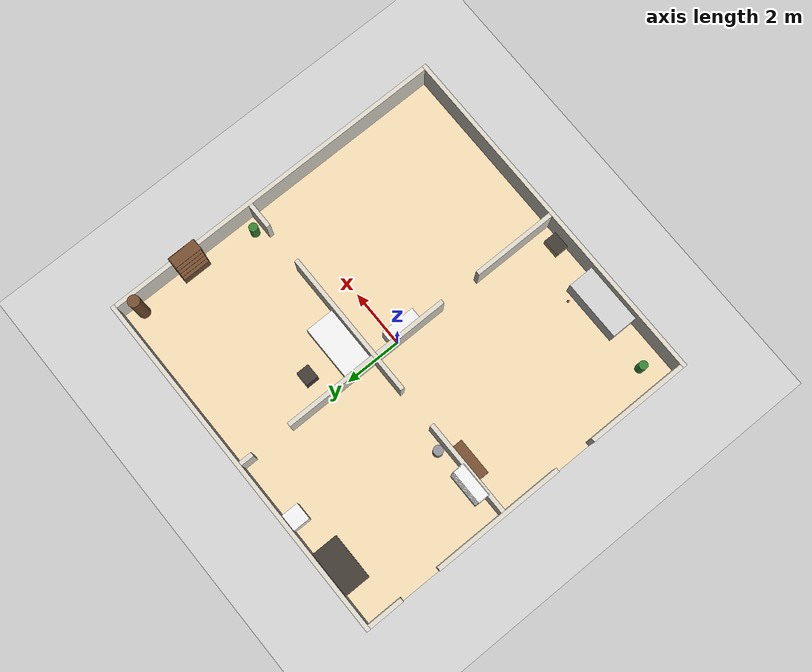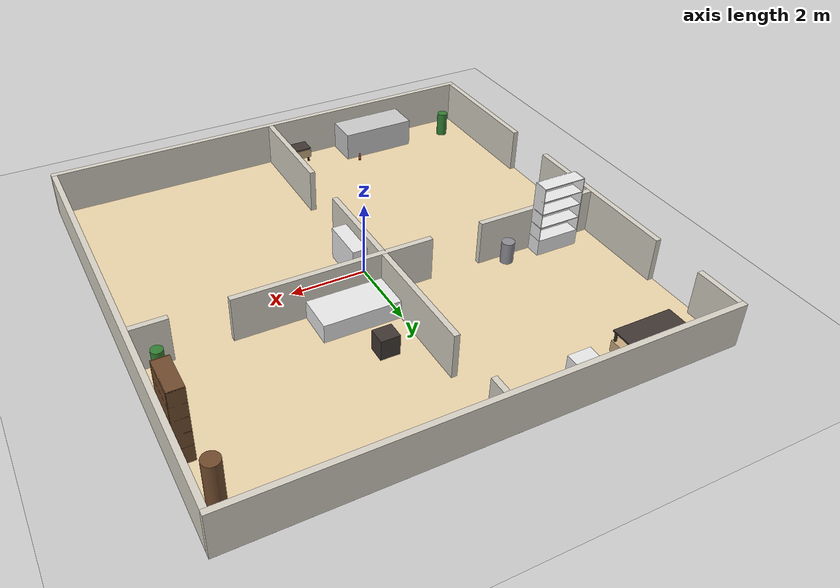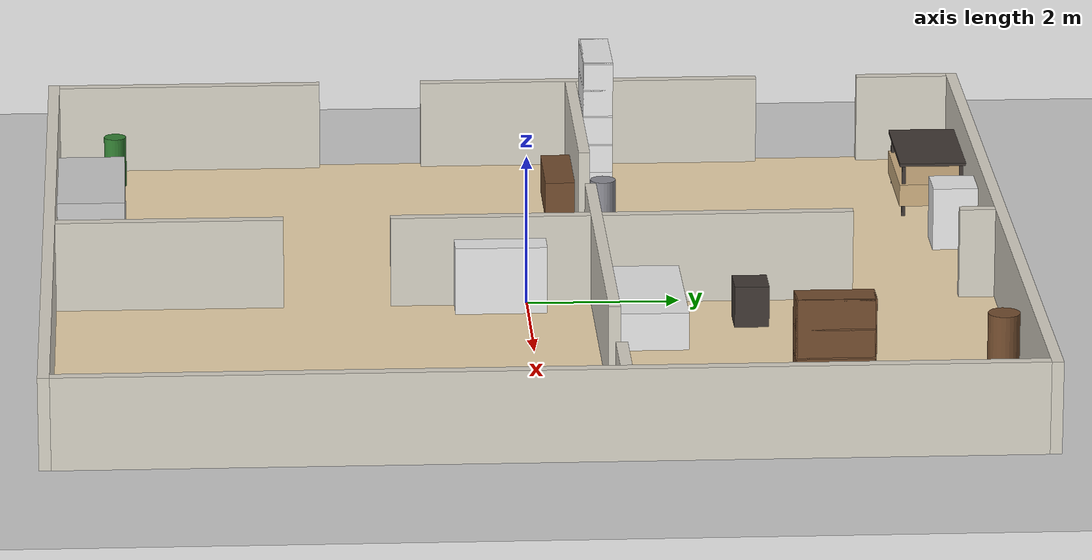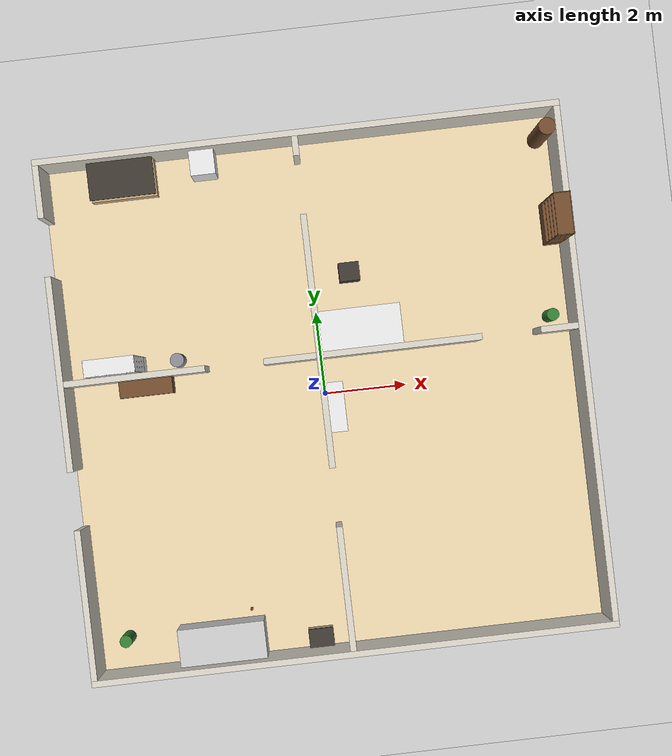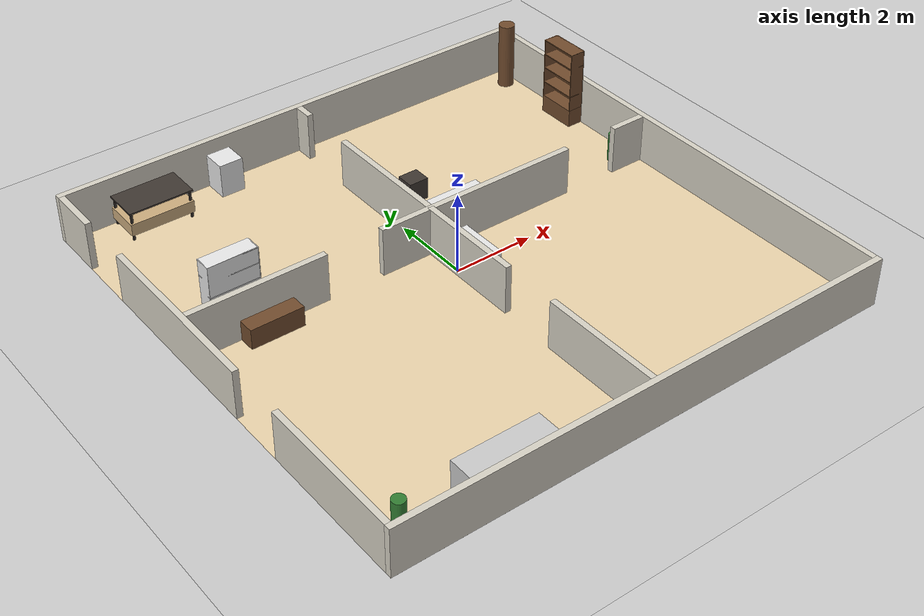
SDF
<sdf version="1.6">
 <world name="robocup_casa">
  <include><uri>model://sun</uri></include>
  <include><uri>model://ground_plane</uri></include>
  <model name="muros">
   <static>true</static>
   <link name="l0">
    <pose>0.000 -6.225 0.600 0 0 0.0000</pose>
    <collision name="c"><geometry><box><size>12.600 0.150 1.200</size></box></geometry></collision>
    <visual name="v">
     <geometry><box><size>12.600 0.150 1.200</size></box></geometry>
     <material><ambient>0.85 0.83 0.78 1</ambient><diffuse>0.85 0.83 0.78 1</diffuse></material>
    </visual>
   </link>
   <link name="l1">
    <pose>0.000 6.225 0.600 0 0 0.0000</pose>
    <collision name="c"><geometry><box><size>12.600 0.150 1.200</size></box></geometry></collision>
    <visual name="v">
     <geometry><box><size>12.600 0.150 1.200</size></box></geometry>
     <material><ambient>0.85 0.83 0.78 1</ambient><diffuse>0.85 0.83 0.78 1</diffuse></material>
    </visual>
   </link>
   <link name="l2">
    <pose>6.225 0.000 0.600 0 0 0.0000</pose>
    <collision name="c"><geometry><box><size>0.150 12.300 1.200</size></box></geometry></collision>
    <visual name="v">
     <geometry><box><size>0.150 12.300 1.200</size></box></geometry>
     <material><ambient>0.85 0.83 0.78 1</ambient><diffuse>0.85 0.83 0.78 1</diffuse></material>
    </visual>
   </link>
   <link name="l3">
    <pose>-6.225 -4.356 0.600 0 0 0.0000</pose>
    <collision name="c"><geometry><box><size>0.150 3.588 1.200</size></box></geometry></collision>
    <visual name="v">
     <geometry><box><size>0.150 3.588 1.200</size></box></geometry>
     <material><ambient>0.85 0.83 0.78 1</ambient><diffuse>0.85 0.83 0.78 1</diffuse></material>
    </visual>
   </link>
   <link name="l4">
    <pose>-6.225 1.169 0.600 0 0 0.0000</pose>
    <collision name="c"><geometry><box><size>0.150 4.662 1.200</size></box></geometry></collision>
    <visual name="v">
     <geometry><box><size>0.150 4.662 1.200</size></box></geometry>
     <material><ambient>0.85 0.83 0.78 1</ambient><diffuse>0.85 0.83 0.78 1</diffuse></material>
    </visual>
   </link>
   <link name="l5">
    <pose>-6.225 5.525 0.600 0 0 0.0000</pose>
    <collision name="c"><geometry><box><size>0.150 1.250 1.200</size></box></geometry></collision>
    <visual name="v">
     <geometry><box><size>0.150 1.250 1.200</size></box></geometry>
     <material><ambient>0.85 0.83 0.78 1</ambient><diffuse>0.85 0.83 0.78 1</diffuse></material>
    </visual>
   </link>
   <link name="l6">
    <pose>-0.035 -4.664 0.600 0 0 0.0000</pose>
    <collision name="c"><geometry><box><size>0.150 2.972 1.200</size></box></geometry></collision>
    <visual name="v">
     <geometry><box><size>0.150 2.972 1.200</size></box></geometry>
     <material><ambient>0.85 0.83 0.78 1</ambient><diffuse>0.85 0.83 0.78 1</diffuse></material>
    </visual>
   </link>
   <link name="l7">
    <pose>-0.035 1.253 0.600 0 0 0.0000</pose>
    <collision name="c"><geometry><box><size>0.150 6.062 1.200</size></box></geometry></collision>
    <visual name="v">
     <geometry><box><size>0.150 6.062 1.200</size></box></geometry>
     <material><ambient>0.85 0.83 0.78 1</ambient><diffuse>0.85 0.83 0.78 1</diffuse></material>
    </visual>
   </link>
   <link name="l8">
    <pose>-0.035 5.917 0.600 0 0 0.0000</pose>
    <collision name="c"><geometry><box><size>0.150 0.466 1.200</size></box></geometry></collision>
    <visual name="v">
     <geometry><box><size>0.150 0.466 1.200</size></box></geometry>
     <material><ambient>0.85 0.83 0.78 1</ambient><diffuse>0.85 0.83 0.78 1</diffuse></material>
    </visual>
   </link>
   <link name="l9">
    <pose>-4.461 0.917 0.600 0 0 0.0000</pose>
    <collision name="c"><geometry><box><size>3.378 0.150 1.200</size></box></geometry></collision>
    <visual name="v">
     <geometry><box><size>3.378 0.150 1.200</size></box></geometry>
     <material><ambient>0.85 0.83 0.78 1</ambient><diffuse>0.85 0.83 0.78 1</diffuse></material>
    </visual>
   </link>
   <link name="l10">
    <pose>1.239 0.917 0.600 0 0 0.0000</pose>
    <collision name="c"><geometry><box><size>5.222 0.150 1.200</size></box></geometry></collision>
    <visual name="v">
     <geometry><box><size>5.222 0.150 1.200</size></box></geometry>
     <material><ambient>0.85 0.83 0.78 1</ambient><diffuse>0.85 0.83 0.78 1</diffuse></material>
    </visual>
   </link>
   <link name="l11">
    <pose>5.700 0.917 0.600 0 0 0.0000</pose>
    <collision name="c"><geometry><box><size>0.900 0.150 1.200</size></box></geometry></collision>
    <visual name="v">
     <geometry><box><size>0.900 0.150 1.200</size></box></geometry>
     <material><ambient>0.85 0.83 0.78 1</ambient><diffuse>0.85 0.83 0.78 1</diffuse></material>
    </visual>
   </link>
  </model>
  <model name="piso_casa">
   <static>true</static>
   <link name="l">
    <pose>0.000 0.000 0.0005 0 0 0</pose>
    <visual name="v">
     <geometry><box><size>12.6 12.6 0.001</size></box></geometry>
     <material><ambient>0.93 0.84 0.68 1</ambient><diffuse>0.93 0.84 0.68 1</diffuse></material>
    </visual>
   </link>
  </model>
  <model name="laundry_table">
   <static>true</static>
   <link name="l0">
    <pose>-4.298 5.700 0.300 0 0 0.0000</pose>
    <collision name="c"><geometry><box><size>1.600 0.900 0.300</size></box></geometry></collision>
    <visual name="v">
     <geometry><box><size>1.600 0.900 0.300</size></box></geometry>
     <material><ambient>0.80 0.68 0.50 1</ambient><diffuse>0.80 0.68 0.50 1</diffuse></material>
    </visual>
   </link>
   <link name="l1">
    <pose>-4.298 5.700 0.730 0 0 0.0000</pose>
    <collision name="c"><geometry><box><size>1.600 0.900 0.040</size></box></geometry></collision>
    <visual name="v">
     <geometry><box><size>1.600 0.900 0.040</size></box></geometry>
     <material><ambient>0.25 0.22 0.20 1</ambient><diffuse>0.25 0.22 0.20 1</diffuse></material>
    </visual>
   </link>
   <link name="l2">
    <pose>-5.038 5.310 0.355 0 0 0.0000</pose>
    <collision name="c"><geometry><box><size>0.050 0.050 0.710</size></box></geometry></collision>
    <visual name="v">
     <geometry><box><size>0.050 0.050 0.710</size></box></geometry>
     <material><ambient>0.25 0.22 0.20 1</ambient><diffuse>0.25 0.22 0.20 1</diffuse></material>
    </visual>
   </link>
   <link name="l3">
    <pose>-5.038 6.090 0.355 0 0 0.0000</pose>
    <collision name="c"><geometry><box><size>0.050 0.050 0.710</size></box></geometry></collision>
    <visual name="v">
     <geometry><box><size>0.050 0.050 0.710</size></box></geometry>
     <material><ambient>0.25 0.22 0.20 1</ambient><diffuse>0.25 0.22 0.20 1</diffuse></material>
    </visual>
   </link>
   <link name="l4">
    <pose>-3.558 5.310 0.355 0 0 0.0000</pose>
    <collision name="c"><geometry><box><size>0.050 0.050 0.710</size></box></geometry></collision>
    <visual name="v">
     <geometry><box><size>0.050 0.050 0.710</size></box></geometry>
     <material><ambient>0.25 0.22 0.20 1</ambient><diffuse>0.25 0.22 0.20 1</diffuse></material>
    </visual>
   </link>
   <link name="l5">
    <pose>-3.558 6.090 0.355 0 0 0.0000</pose>
    <collision name="c"><geometry><box><size>0.050 0.050 0.710</size></box></geometry></collision>
    <visual name="v">
     <geometry><box><size>0.050 0.050 0.710</size></box></geometry>
     <material><ambient>0.25 0.22 0.20 1</ambient><diffuse>0.25 0.22 0.20 1</diffuse></material>
    </visual>
   </link>
  </model>
  <model name="washing_machine">
   <static>true</static>
   <link name="l0">
    <pose>-2.310 5.850 0.425 0 0 0.0000</pose>
    <collision name="c"><geometry><box><size>0.600 0.600 0.850</size></box></geometry></collision>
    <visual name="v">
     <geometry><box><size>0.600 0.600 0.850</size></box></geometry>
     <material><ambient>0.92 0.92 0.92 1</ambient><diffuse>0.92 0.92 0.92 1</diffuse></material>
    </visual>
   </link>
  </model>
  <model name="shelf">
   <static>true</static>
   <link name="l0">
    <pose>-4.900 1.192 0.225 0 0 0.0000</pose>
    <collision name="c"><geometry><box><size>1.200 0.400 0.450</size></box></geometry></collision>
    <visual name="v">
     <geometry><box><size>1.200 0.400 0.450</size></box></geometry>
     <material><ambient>0.92 0.92 0.92 1</ambient><diffuse>0.92 0.92 0.92 1</diffuse></material>
    </visual>
   </link>
   <link name="l1">
    <pose>-4.900 1.002 1.225 0 0 0.0000</pose>
    <collision name="c"><geometry><box><size>1.200 0.020 1.550</size></box></geometry></collision>
    <visual name="v">
     <geometry><box><size>1.200 0.020 1.550</size></box></geometry>
     <material><ambient>0.92 0.92 0.92 1</ambient><diffuse>0.92 0.92 0.92 1</diffuse></material>
    </visual>
   </link>
   <link name="l2">
    <pose>-5.490 1.192 1.225 0 0 0.0000</pose>
    <collision name="c"><geometry><box><size>0.020 0.400 1.550</size></box></geometry></collision>
    <visual name="v">
     <geometry><box><size>0.020 0.400 1.550</size></box></geometry>
     <material><ambient>0.92 0.92 0.92 1</ambient><diffuse>0.92 0.92 0.92 1</diffuse></material>
    </visual>
   </link>
   <link name="l3">
    <pose>-4.310 1.192 1.225 0 0 0.0000</pose>
    <collision name="c"><geometry><box><size>0.020 0.400 1.550</size></box></geometry></collision>
    <visual name="v">
     <geometry><box><size>0.020 0.400 1.550</size></box></geometry>
     <material><ambient>0.92 0.92 0.92 1</ambient><diffuse>0.92 0.92 0.92 1</diffuse></material>
    </visual>
   </link>
   <link name="l4">
    <pose>-4.900 1.192 0.840 0 0 0.0000</pose>
    <collision name="c"><geometry><box><size>1.200 0.400 0.020</size></box></geometry></collision>
    <visual name="v">
     <geometry><box><size>1.200 0.400 0.020</size></box></geometry>
     <material><ambient>0.92 0.92 0.92 1</ambient><diffuse>0.92 0.92 0.92 1</diffuse></material>
    </visual>
   </link>
   <link name="l5">
    <pose>-4.900 1.192 1.240 0 0 0.0000</pose>
    <collision name="c"><geometry><box><size>1.200 0.400 0.020</size></box></geometry></collision>
    <visual name="v">
     <geometry><box><size>1.200 0.400 0.020</size></box></geometry>
     <material><ambient>0.92 0.92 0.92 1</ambient><diffuse>0.92 0.92 0.92 1</diffuse></material>
    </visual>
   </link>
   <link name="l6">
    <pose>-4.900 1.192 1.610 0 0 0.0000</pose>
    <collision name="c"><geometry><box><size>1.200 0.400 0.020</size></box></geometry></collision>
    <visual name="v">
     <geometry><box><size>1.200 0.400 0.020</size></box></geometry>
     <material><ambient>0.92 0.92 0.92 1</ambient><diffuse>0.92 0.92 0.92 1</diffuse></material>
    </visual>
   </link>
   <link name="l7">
    <pose>-4.900 1.192 1.990 0 0 0.0000</pose>
    <collision name="c"><geometry><box><size>1.200 0.400 0.020</size></box></geometry></collision>
    <visual name="v">
     <geometry><box><size>1.200 0.400 0.020</size></box></geometry>
     <material><ambient>0.92 0.92 0.92 1</ambient><diffuse>0.92 0.92 0.92 1</diffuse></material>
    </visual>
   </link>
  </model>
  <model name="laundry_trash_bin">
   <static>true</static>
   <link name="l0">
    <pose>-3.472 1.212 0.300 0 0 0.0000</pose>
    <collision name="c">
     <geometry><cylinder><radius>0.170</radius><length>0.600</length></cylinder></geometry>
    </collision>
    <visual name="v">
     <geometry><cylinder><radius>0.170</radius><length>0.600</length></cylinder></geometry>
     <material><ambient>0.55 0.55 0.58 1</ambient><diffuse>0.55 0.55 0.58 1</diffuse></material>
    </visual>
   </link>
  </model>
  <model name="bed">
   <static>true</static>
   <link name="l0">
    <pose>1.040 1.492 0.250 0 0 0.0000</pose>
    <collision name="c"><geometry><box><size>2.000 1.000 0.500</size></box></geometry></collision>
    <visual name="v">
     <geometry><box><size>2.000 1.000 0.500</size></box></geometry>
     <material><ambient>0.92 0.92 0.92 1</ambient><diffuse>0.92 0.92 0.92 1</diffuse></material>
    </visual>
   </link>
  </model>
  <model name="bedside_table">
   <static>true</static>
   <link name="l0">
    <pose>0.910 2.870 0.275 0 0 0.0000</pose>
    <collision name="c"><geometry><box><size>0.500 0.450 0.550</size></box></geometry></collision>
    <visual name="v">
     <geometry><box><size>0.500 0.450 0.550</size></box></geometry>
     <material><ambient>0.25 0.22 0.20 1</ambient><diffuse>0.25 0.22 0.20 1</diffuse></material>
    </visual>
   </link>
  </model>
  <model name="coat_rack">
   <static>true</static>
   <link name="l0">
    <pose>5.850 5.600 0.850 0 0 0.0000</pose>
    <collision name="c">
     <geometry><cylinder><radius>0.200</radius><length>1.700</length></cylinder></geometry>
    </collision>
    <visual name="v">
     <geometry><cylinder><radius>0.200</radius><length>1.700</length></cylinder></geometry>
     <material><ambient>0.45 0.30 0.18 1</ambient><diffuse>0.45 0.30 0.18 1</diffuse></material>
    </visual>
   </link>
  </model>
  <model name="bookshelf">
   <static>true</static>
   <link name="l0">
    <pose>5.950 3.500 0.225 0 0 0.0000</pose>
    <collision name="c"><geometry><box><size>0.400 1.000 0.450</size></box></geometry></collision>
    <visual name="v">
     <geometry><box><size>0.400 1.000 0.450</size></box></geometry>
     <material><ambient>0.45 0.30 0.18 1</ambient><diffuse>0.45 0.30 0.18 1</diffuse></material>
    </visual>
   </link>
   <link name="l1">
    <pose>6.140 3.500 1.225 0 0 0.0000</pose>
    <collision name="c"><geometry><box><size>0.020 1.000 1.550</size></box></geometry></collision>
    <visual name="v">
     <geometry><box><size>0.020 1.000 1.550</size></box></geometry>
     <material><ambient>0.45 0.30 0.18 1</ambient><diffuse>0.45 0.30 0.18 1</diffuse></material>
    </visual>
   </link>
   <link name="l2">
    <pose>5.950 3.010 1.225 0 0 0.0000</pose>
    <collision name="c"><geometry><box><size>0.400 0.020 1.550</size></box></geometry></collision>
    <visual name="v">
     <geometry><box><size>0.400 0.020 1.550</size></box></geometry>
     <material><ambient>0.45 0.30 0.18 1</ambient><diffuse>0.45 0.30 0.18 1</diffuse></material>
    </visual>
   </link>
   <link name="l3">
    <pose>5.950 3.990 1.225 0 0 0.0000</pose>
    <collision name="c"><geometry><box><size>0.400 0.020 1.550</size></box></geometry></collision>
    <visual name="v">
     <geometry><box><size>0.400 0.020 1.550</size></box></geometry>
     <material><ambient>0.45 0.30 0.18 1</ambient><diffuse>0.45 0.30 0.18 1</diffuse></material>
    </visual>
   </link>
   <link name="l4">
    <pose>5.950 3.500 0.840 0 0 0.0000</pose>
    <collision name="c"><geometry><box><size>0.400 1.000 0.020</size></box></geometry></collision>
    <visual name="v">
     <geometry><box><size>0.400 1.000 0.020</size></box></geometry>
     <material><ambient>0.45 0.30 0.18 1</ambient><diffuse>0.45 0.30 0.18 1</diffuse></material>
    </visual>
   </link>
   <link name="l5">
    <pose>5.950 3.500 1.240 0 0 0.0000</pose>
    <collision name="c"><geometry><box><size>0.400 1.000 0.020</size></box></geometry></collision>
    <visual name="v">
     <geometry><box><size>0.400 1.000 0.020</size></box></geometry>
     <material><ambient>0.45 0.30 0.18 1</ambient><diffuse>0.45 0.30 0.18 1</diffuse></material>
    </visual>
   </link>
   <link name="l6">
    <pose>5.950 3.500 1.610 0 0 0.0000</pose>
    <collision name="c"><geometry><box><size>0.400 1.000 0.020</size></box></geometry></collision>
    <visual name="v">
     <geometry><box><size>0.400 1.000 0.020</size></box></geometry>
     <material><ambient>0.45 0.30 0.18 1</ambient><diffuse>0.45 0.30 0.18 1</diffuse></material>
    </visual>
   </link>
   <link name="l7">
    <pose>5.950 3.500 1.990 0 0 0.0000</pose>
    <collision name="c"><geometry><box><size>0.400 1.000 0.020</size></box></geometry></collision>
    <visual name="v">
     <geometry><box><size>0.400 1.000 0.020</size></box></geometry>
     <material><ambient>0.45 0.30 0.18 1</ambient><diffuse>0.45 0.30 0.18 1</diffuse></material>
    </visual>
   </link>
  </model>
  <model name="planta_bedroom">
   <static>true</static>
   <link name="l0">
    <pose>5.670 1.262 0.350 0 0 0.0000</pose>
    <collision name="c">
     <geometry><cylinder><radius>0.150</radius><length>0.700</length></cylinder></geometry>
    </collision>
    <visual name="v">
     <geometry><cylinder><radius>0.150</radius><length>0.700</length></cylinder></geometry>
     <material><ambient>0.20 0.50 0.20 1</ambient><diffuse>0.20 0.50 0.20 1</diffuse></material>
    </visual>
   </link>
  </model>
  <model name="tv_stand">
   <static>true</static>
   <link name="l0">
    <pose>-4.312 0.642 0.250 0 0 0.0000</pose>
    <collision name="c"><geometry><box><size>1.300 0.400 0.500</size></box></geometry></collision>
    <visual name="v">
     <geometry><box><size>1.300 0.400 0.500</size></box></geometry>
     <material><ambient>0.45 0.30 0.18 1</ambient><diffuse>0.45 0.30 0.18 1</diffuse></material>
    </visual>
   </link>
  </model>
  <model name="sofa">
   <static>true</static>
   <link name="l0">
    <pose>-3.150 -5.700 0.400 0 0 0.0000</pose>
    <collision name="c"><geometry><box><size>2.100 0.900 0.800</size></box></geometry></collision>
    <visual name="v">
     <geometry><box><size>2.100 0.900 0.800</size></box></geometry>
     <material><ambient>0.80 0.80 0.80 1</ambient><diffuse>0.80 0.80 0.80 1</diffuse></material>
    </visual>
   </link>
  </model>
  <model name="coffee_table">
   <static>true</static>
   <link name="l0">
    <pose>-0.770 -5.880 0.275 0 0 0.0000</pose>
    <collision name="c"><geometry><box><size>0.600 0.450 0.250</size></box></geometry></collision>
    <visual name="v">
     <geometry><box><size>0.600 0.450 0.250</size></box></geometry>
     <material><ambient>0.80 0.68 0.50 1</ambient><diffuse>0.80 0.68 0.50 1</diffuse></material>
    </visual>
   </link>
   <link name="l1">
    <pose>-0.770 -5.880 0.430 0 0 0.0000</pose>
    <collision name="c"><geometry><box><size>0.600 0.450 0.040</size></box></geometry></collision>
    <visual name="v">
     <geometry><box><size>0.600 0.450 0.040</size></box></geometry>
     <material><ambient>0.25 0.22 0.20 1</ambient><diffuse>0.25 0.22 0.20 1</diffuse></material>
    </visual>
   </link>
   <link name="l2">
    <pose>-1.010 -6.045 0.205 0 0 0.0000</pose>
    <collision name="c"><geometry><box><size>0.050 0.050 0.410</size></box></geometry></collision>
    <visual name="v">
     <geometry><box><size>0.050 0.050 0.410</size></box></geometry>
     <material><ambient>0.25 0.22 0.20 1</ambient><diffuse>0.25 0.22 0.20 1</diffuse></material>
    </visual>
   </link>
   <link name="l3">
    <pose>-1.010 -5.715 0.205 0 0 0.0000</pose>
    <collision name="c"><geometry><box><size>0.050 0.050 0.410</size></box></geometry></collision>
    <visual name="v">
     <geometry><box><size>0.050 0.050 0.410</size></box></geometry>
     <material><ambient>0.25 0.22 0.20 1</ambient><diffuse>0.25 0.22 0.20 1</diffuse></material>
    </visual>
   </link>
   <link name="l4">
    <pose>-0.530 -6.045 0.205 0 0 0.0000</pose>
    <collision name="c"><geometry><box><size>0.050 0.050 0.410</size></box></geometry></collision>
    <visual name="v">
     <geometry><box><size>0.050 0.050 0.410</size></box></geometry>
     <material><ambient>0.25 0.22 0.20 1</ambient><diffuse>0.25 0.22 0.20 1</diffuse></material>
    </visual>
   </link>
   <link name="l5">
    <pose>-0.530 -5.715 0.205 0 0 0.0000</pose>
    <collision name="c"><geometry><box><size>0.050 0.050 0.410</size></box></geometry></collision>
    <visual name="v">
     <geometry><box><size>0.050 0.050 0.410</size></box></geometry>
     <material><ambient>0.25 0.22 0.20 1</ambient><diffuse>0.25 0.22 0.20 1</diffuse></material>
    </visual>
   </link>
  </model>
  <model name="planta_living">
   <static>true</static>
   <link name="l0">
    <pose>-5.460 -5.390 0.350 0 0 0.0000</pose>
    <collision name="c">
     <geometry><cylinder><radius>0.150</radius><length>0.700</length></cylinder></geometry>
    </collision>
    <visual name="v">
     <geometry><cylinder><radius>0.150</radius><length>0.700</length></cylinder></geometry>
     <material><ambient>0.20 0.50 0.20 1</ambient><diffuse>0.20 0.50 0.20 1</diffuse></material>
    </visual>
   </link>
  </model>
  <model name="cabinet">
   <static>true</static>
   <link name="l0">
    <pose>0.240 -0.350 0.450 0 0 0.0000</pose>
    <collision name="c"><geometry><box><size>0.400 1.200 0.900</size></box></geometry></collision>
    <visual name="v">
     <geometry><box><size>0.400 1.200 0.900</size></box></geometry>
     <material><ambient>0.92 0.92 0.92 1</ambient><diffuse>0.92 0.92 0.92 1</diffuse></material>
    </visual>
   </link>
  </model>
  <model name="botella_suelo">
   <pose>-2.400 -5.050 0.001 0 0 -1.571</pose>
   <link name="link">
    <inertial>
     <pose>0 0 0.1100 0 0 0</pose>
     <mass>0.55</mass>
     <inertia>
      <ixx>2.368e-03</ixx>
      <iyy>2.368e-03</iyy>
      <izz>2.995e-04</izz>
      <ixy>0</ixy>
      <ixz>0</ixz>
      <iyz>0</iyz>
     </inertia>
    </inertial>
    <collision name="c">
     <pose>0 0 0.1100 0 0 0</pose>
     <geometry><cylinder><radius>0.0330</radius><length>0.2200</length></cylinder></geometry>
     <surface><friction><ode><mu>1.0</mu><mu2>1.0</mu2></ode></friction></surface>
    </collision>
    <visual name="v0">
     <pose>0 0 0.075 0 0 0</pose>
     <geometry><cylinder><radius>0.0330</radius><length>0.1500</length></cylinder></geometry>
     <material><ambient>0.86 0.40 0.22 1</ambient><diffuse>0.86 0.40 0.22 1</diffuse></material>
    </visual>
    <visual name="v1">
     <pose>0 0 0.16 0 0 0</pose>
     <geometry><cylinder><radius>0.0270</radius><length>0.0200</length></cylinder></geometry>
     <material><ambient>0.86 0.40 0.22 1</ambient><diffuse>0.86 0.40 0.22 1</diffuse></material>
    </visual>
    <visual name="v2">
     <pose>0 0 0.182 0 0 0</pose>
     <geometry><cylinder><radius>0.0150</radius><length>0.0250</length></cylinder></geometry>
     <transparency>0.4</transparency>
     <material><ambient>0.75 0.78 0.80 1</ambient><diffuse>0.75 0.78 0.80 1</diffuse></material>
    </visual>
    <visual name="v3">
     <pose>0 0 0.192 0 0 0</pose>
     <geometry><cylinder><radius>0.0190</radius><length>0.0040</length></cylinder></geometry>
     <transparency>0.2</transparency>
     <material><ambient>0.75 0.78 0.80 1</ambient><diffuse>0.75 0.78 0.80 1</diffuse></material>
    </visual>
    <visual name="v4">
     <pose>0 0 0.2075 0 0 0</pose>
     <geometry><cylinder><radius>0.0160</radius><length>0.0250</length></cylinder></geometry>
     <material><ambient>0.80 0.10 0.12 1</ambient><diffuse>0.80 0.10 0.12 1</diffuse></material>
    </visual>
    <visual name="v5">
     <pose>0 0 0.13 0 0 0</pose>
     <geometry><cylinder><radius>0.0340</radius><length>0.0120</length></cylinder></geometry>
     <material><ambient>0.80 0.10 0.12 1</ambient><diffuse>0.80 0.10 0.12 1</diffuse></material>
    </visual>
    <visual name="v6">
     <pose>0 0 0.0625 0 0 0</pose>
     <geometry><cylinder><radius>0.0340</radius><length>0.0150</length></cylinder></geometry>
     <material><ambient>0.85 0.75 0.20 1</ambient><diffuse>0.85 0.75 0.20 1</diffuse></material>
    </visual>
    <visual name="v7">
     <pose>0 0 0.05 0 0 0</pose>
     <geometry><cylinder><radius>0.0340</radius><length>0.0100</length></cylinder></geometry>
     <material><ambient>0.30 0.60 0.25 1</ambient><diffuse>0.30 0.60 0.25 1</diffuse></material>
    </visual>
    <visual name="v8">
     <pose>0 0 0.0375 0 0 0</pose>
     <geometry><cylinder><radius>0.0340</radius><length>0.0150</length></cylinder></geometry>
     <material><ambient>0.80 0.10 0.12 1</ambient><diffuse>0.80 0.10 0.12 1</diffuse></material>
    </visual>
   </link>
  </model>
 </world>
</sdf>
